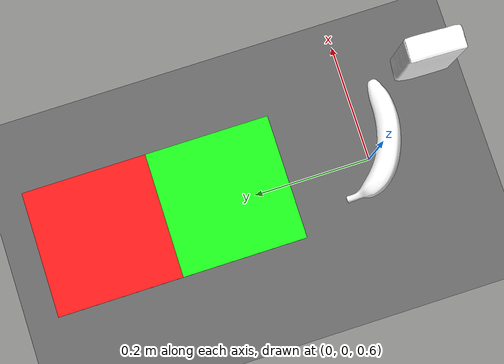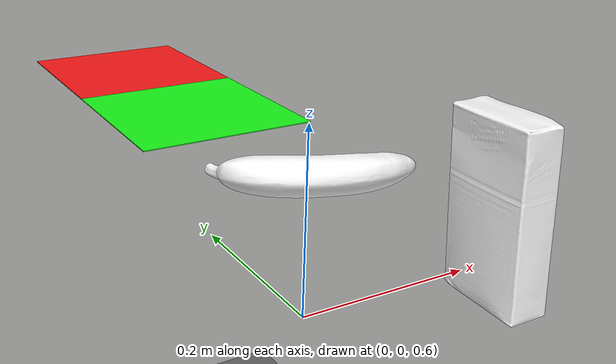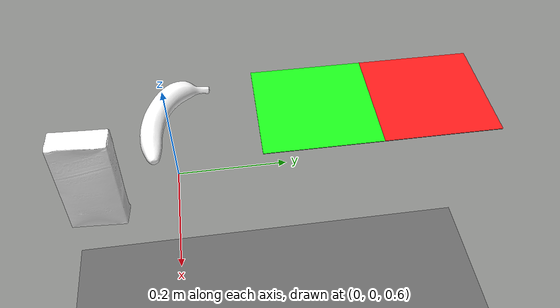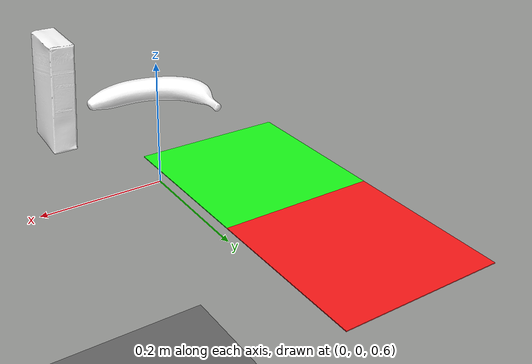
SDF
<?xml version="1.0" ?>
<!-- Based on a M0M test run -->
<sdf version="1.9">
	<world name="M0M_problem_0">
		<model name="floor#1_1">
			<link name="table_top">
				<pose>0.0 0.0 0 0 0 0</pose>
				<collision name="table_top_collision">
					<geometry>
						<box>
							<size>3 3 0.001</size>
						</box>
					</geometry>
				</collision>
				<visual name="floor_visual">
					<geometry>
						<box>
							<size>3 3 0.001</size>
						</box>
					</geometry>
					<material>
						<ambient>0.4 0.4 0.4 1</ambient>
						<diffuse>0.4 0.4 0.4 1</diffuse>
						<specular>0.4 0.4 0.4 1</specular>
						<emissive>0.4 0.4 0.4 1</emissive>
					</material>
				</visual>
			</link>
		</model>
		<model name="table#1_1">
			<static>true</static>
			<pose>0 0 0 0 0 0</pose>
                        <link name='world'> </link>
			<joint name="fix_to_world_0" type="fixed">
				<parent>world</parent>
				<child>table_top</child>
			</joint>
			<joint name="fix_to_world_1" type="fixed">
				<parent>world</parent>
				<child>table_leg_1</child>
			</joint>
			<joint name="fix_to_world_2" type="fixed">
				<parent>world</parent>
				<child>table_leg_2</child>
			</joint>
			<joint name="fix_to_world_3" type="fixed">
				<parent>world</parent>
				<child>table_leg_3</child>
			</joint>
			<joint name="fix_to_world_4" type="fixed">
				<parent>world</parent>
				<child>table_leg_4</child>
			</joint>
			<link name="table_top">
				<pose>0.0 0.0 0.715 0 0 0</pose>
				<collision name="table_top_collision">
					<geometry>
						<box>
							<size>0.6 1.2 0.03</size>
						</box>
					</geometry>
				</collision>
			</link>
			<link name="table_leg_1">
				<pose>-0.285 -0.585 0.35 0 0 0</pose>
				<collision name="table_leg_1_collision">
					<geometry>
						<box>
							<size>0.03 0.03 0.7</size>
						</box>
					</geometry>
				</collision>
			</link>
			<link name="table_leg_2">
				<pose>-0.285 0.585 0.35 0 0 0</pose>
				<collision name="table_leg_2_collision">
					<geometry>
						<box>
							<size>0.03 0.03 0.7</size>
						</box>
					</geometry>
				</collision>
			</link>
			<link name="table_leg_3">
				<pose>0.285 -0.585 0.35 0 0 0</pose>
				<collision name="table_leg_3_collision">
					<geometry>
						<box>
							<size>0.03 0.03 0.7</size>
						</box>
					</geometry>
				</collision>
			</link>
			<link name="table_leg_4">
				<pose>0.285 0.585 0.35 0 0 0</pose>
				<collision name="table_leg_3_collision">
					<geometry>
						<box>
							<size>0.03 0.03 0.7</size>
						</box>
					</geometry>
				</collision>
			</link>
		</model>
		<model name="pillar#4_1">
			<static>true</static>
			<pose>0.0 0.4500000059604645 0.740 0 0 0</pose>
			<link name="pillar#4">
				<collision name="pillar#4_collision">
					<geometry>
						<box>
							<size>0.2 0.2 0.001</size>
						</box>
					</geometry>
				</collision>
				<visual name="pillar#4_visual">
					<geometry>
						<box>
							<size>0.2 0.2 0.001</size>
						</box>
					</geometry>
					<material>
						<ambient>1 0.1 0.1 1</ambient>
						<diffuse>1 0.1 0.1 1</diffuse>
						<specular>1 0.1 0.1 1</specular>
						<emissive>1 0.1 0.1 1</emissive>
					</material>
				</visual>

			</link>
		</model>
		<model name="pillar#3_1">
			<static>true</static>
			<pose>0.0 0.250000000298023224 0.740 0 0 0</pose>
			<link name="pillar#3">
				<collision name="pillar#3_collision">
					<geometry>
						<box>
							<size>0.2 0.2 0.001</size>
						</box>
					</geometry>
				</collision>
				<visual name="pillar#3_visual">
					<geometry>
						<box>
							<size>0.2 0.2 0.001</size>
						</box>
					</geometry>
					<material>
						<ambient>0.1 1 0.1 1</ambient>
						<diffuse>0.1 1 0.1 1</diffuse>
						<specular>0.1 1 0.1 1</specular>
						<emissive>0.1 1 0.1 1</emissive>
					</material>
				</visual>

			</link>
		</model>
		<model name="banana#12_1">
			<static>false</static>
			<pose>0.0031472998671233654 -0.004283192101866007 0.7528123259544373 0 0 1.5</pose>
			<link name="banana">
				<collision name="banana_collision">
					<geometry>
						<mesh>
							<uri>../ycb/011_banana/textured.obj</uri>
							<scale>1.0 1.0 1.0</scale>
						</mesh>
					</geometry>
				</collision>
				<visual name="banana_visual">
					<geometry>
						<mesh>
							<uri>../ycb/011_banana/textured.obj</uri>
							<scale>1.0 1.0 1.0</scale>
						</mesh>
					</geometry>

					<material>
						<ambient>1 1 1 1</ambient>
						<diffuse>1 1 1 1</diffuse>
						<specular>1 1 1 1</specular>
						<emissive>1 1 1 1</emissive>
					</material>

				</visual>
			</link>
		</model>
		<model name="sugar_box#13_1">
			<static>false</static>
			<pose>0.11750369518995285 -0.1199718788266182 0.7401214075088501 0 0 0</pose>
			<link name="sugar_box">
				<collision name="sugar_box_collision">
					<geometry>
						<mesh>
							<uri>../ycb/004_sugar_box/textured.obj</uri>
							<scale>1.0 1.0 1.0</scale>
						</mesh>
					</geometry>
				</collision>
				<visual name="sugar_box_visual">
					<geometry>
						<mesh>
							<uri>../ycb/004_sugar_box/textured.obj</uri>
							<scale>1.0 1.0 1.0</scale>
						</mesh>
					</geometry>
					<material>
						<ambient>1 1 1 1</ambient>
						<diffuse>1 1 1 1</diffuse>
						<specular>1 1 1 1</specular>
						<emissive>1 1 1 1</emissive>
					</material>

				</visual>
			</link>
		</model>
	</world>
</sdf>
